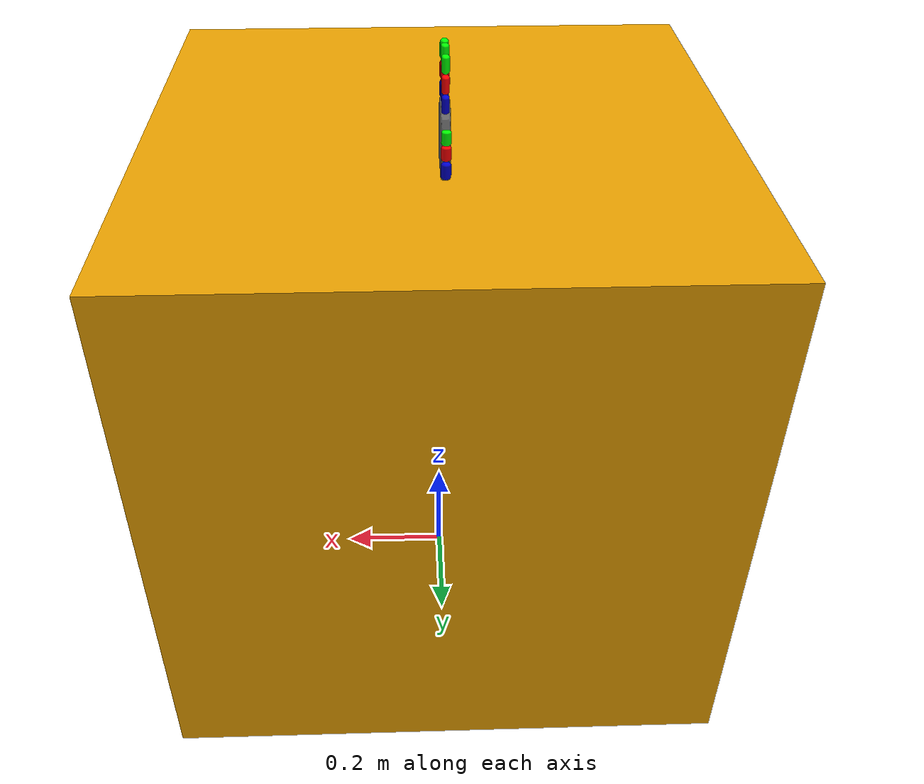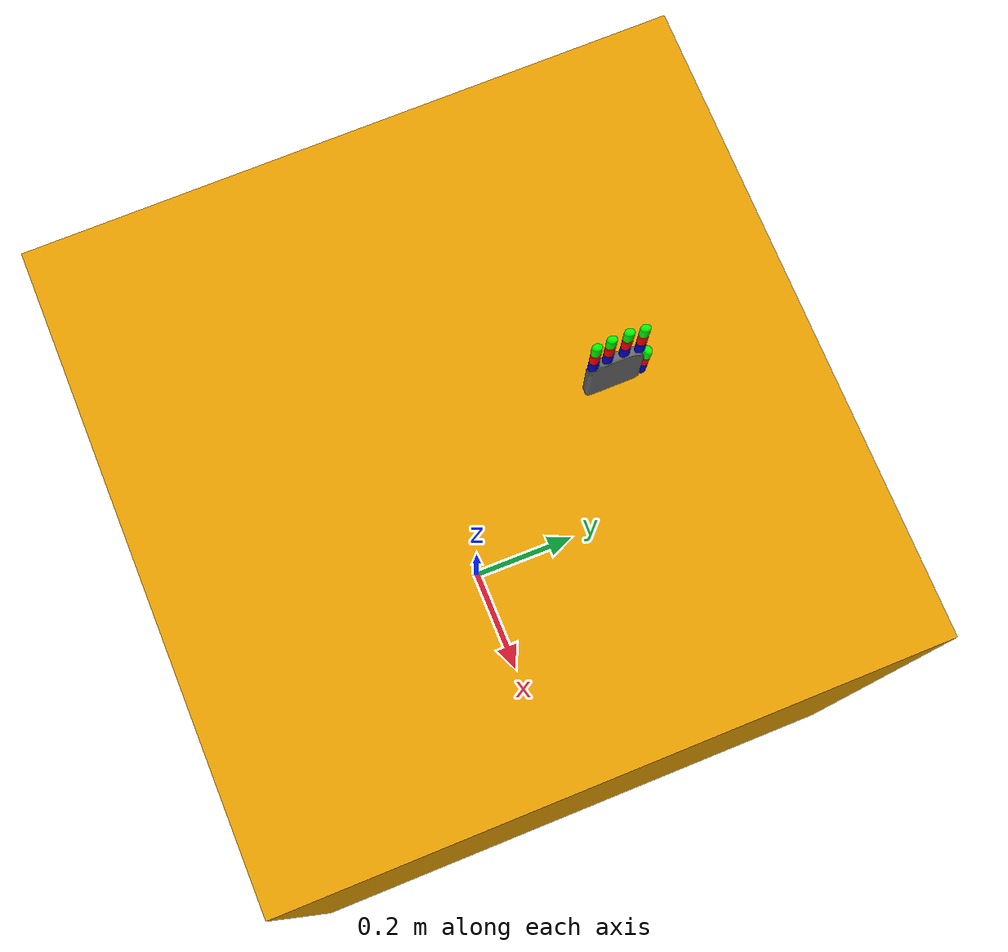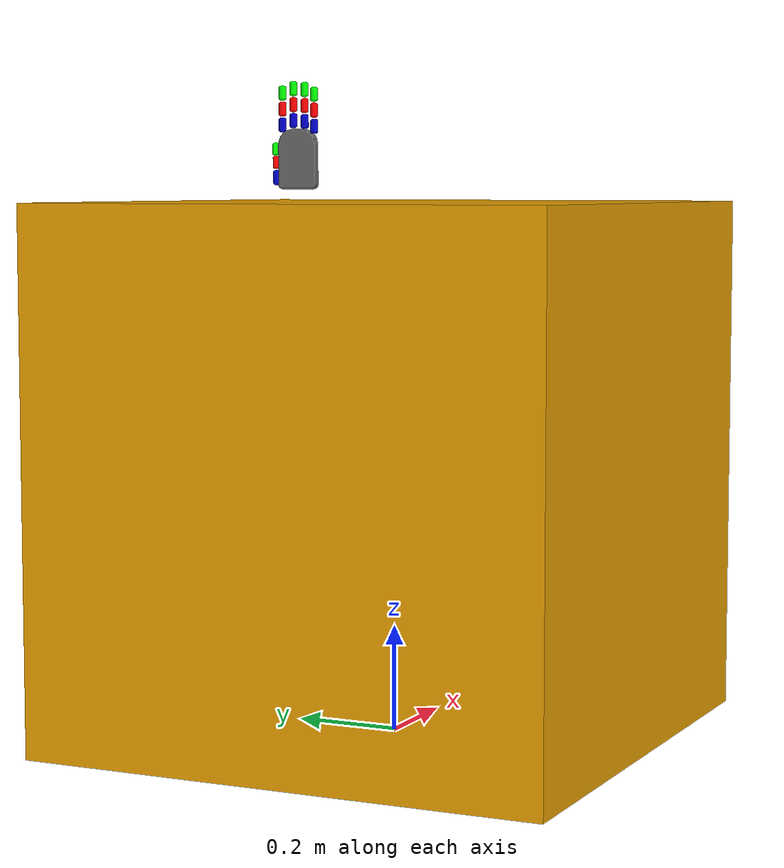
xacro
<?xml version="1.0"?>
<robot xmlns:xacro="http://www.ros.org/wiki/xacro" name="pisa_hand">

	<xacro:include filename="$(find pisa_hand_description)/model/pisa_hand.urdf.xacro"/>

	<link name="box">
		<visual>
			<origin xyz="0 0 0.50" rpy="0 0 0"/>
			<geometry>
				<box size="1.0 1.0 1.0"/>
			</geometry>
		</visual>
	</link>
	<joint name="box_wrist_right_joint_1" type="revolute">
		<origin xyz="0 0.2 1.02" rpy="0 0 0" />
		<parent link="box"/>
		<child link="wrist_right_fake_1"/>
				<axis xyz="1 0 0" />
				<limit lower="${abd_lb *pi/180}" upper="${abd_ub *pi/180}" effort="${effort}" velocity="${velocity}"/>
    	<dynamics damping="${damping}" friction="${friction}"/>
	</joint>
	<link name="wrist_right_fake_1">
	</link>

	<joint name="box_wrist_right_joint_2" type="revolute">
		<origin xyz="0 0 0" rpy="0 0 0" />
		<parent link="wrist_right_fake_1"/>
		<child link="wrist_right_fake_2"/>
				<axis xyz="0 1 0" />
				<limit lower="${abd_lb *pi/180}" upper="${abd_ub *pi/180}" effort="${effort}" velocity="${velocity}"/>
    	<dynamics damping="${damping}" friction="${friction}"/>
	</joint>
	<link name="wrist_right_fake_2">
	</link>

	<joint name="box_wrist_right_joint_3" type="revolute">
		<origin xyz="0 0 0" rpy="0 0 0" />
		<parent link="wrist_right_fake_2"/>
		<child link="wrist_right"/>
				<axis xyz="0 0 1" />
				<limit lower="${abd_lb *pi/180}" upper="${abd_ub *pi/180}" effort="${effort}" velocity="${velocity}"/>
    	<dynamics damping="${damping}" friction="${friction}"/>
	</joint>

	<link name="wrist_right">
	</link>

	<xacro:pisa_hand parent="wrist_right" name="pisa_hand_right" left="false">
		<origin xyz="0.002 0.009 0.038" rpy="0 0 0"/>
	</xacro:pisa_hand>

</robot>

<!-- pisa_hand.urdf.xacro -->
<robot xmlns:xacro="http://ros.org/wiki/xacro">

	<!--
		HAND MODEL v.01
		Material: ABS
		CAD model available at: http://www.naturalmachinemotioninitiative.com/#!softhand/c24r2
	-->

	<xacro:include filename="$(find pisa_hand_description)/model/materials.urdf.xacro"/>

	<xacro:property name="pi" value="3.1415926535897931" />

	<!-- joint properties -->
	<xacro:property name="abd_lb" value="-30" />
	<xacro:property name="abd_ub" value="30" />
	<xacro:property name="thumb_abd_lb" value="0" />
	<xacro:property name="thumb_abd_ub" value="90" />
	<xacro:property name="inner_lb" value="0" />
	<xacro:property name="inner_ub" value="90" />
	<xacro:property name="middle_lb" value="0" />
	<xacro:property name="middle_ub" value="90" />
	<xacro:property name="outer_lb" value="0" />
	<xacro:property name="outer_ub" value="90" />
	<xacro:property name="velocity" value="100" />
	<xacro:property name="effort" value="100" />
	<xacro:property name="damping" value="0.0" />
	<xacro:property name="friction" value="0.0" />

	<!-- synergy vector -->
	<xacro:property name="thumb_abd_R" value="1.3" />
	<xacro:property name="thumb_inner_R" value="1.3" />
	<xacro:property name="thumb_outer_R" value="1.0" />
	<xacro:property name="index_abd_R" value="-0.2" />
	<xacro:property name="index_inner_R" value="1.0" />
	<xacro:property name="index_middle_R" value="1.0" />
	<xacro:property name="index_outer_R" value="1.0" />
	<xacro:property name="middle_abd_R" value="0.0" />
	<xacro:property name="middle_inner_R" value="1.0" />
	<xacro:property name="middle_middle_R" value="1.0" />
	<xacro:property name="middle_outer_R" value="1.0" />
	<xacro:property name="ring_abd_R" value="0.2" />
	<xacro:property name="ring_inner_R" value="1.0" />
	<xacro:property name="ring_middle_R" value="1.0" />
	<xacro:property name="ring_outer_R" value="1.0" />
	<xacro:property name="little_abd_R" value="0.4" />
	<xacro:property name="little_inner_R" value="1.0" />
	<xacro:property name="little_middle_R" value="1.0" />
	<xacro:property name="little_outer_R" value="1.0" />

	<!-- synergy joint properties -->
	<xacro:property name="synergy_lb" value="0.0" />
	<xacro:property name="synergy_ub" value="1.0" />
	<xacro:property name="max_synergy_velocity" value="100" />
	<xacro:property name="max_synergy_effort" value="100" />
	<xacro:property name="synergy_damping" value="0.0" />
	<xacro:property name="synergy_friction" value="0.0" />

	<!-- SOFT FINGER model -->
	<!-- 4 fingers are equal (index, middle, ring, little) -->
	<xacro:macro name="soft_finger" params="parent parent_name name position orientation abd_R ">

		<!-- KNUCKLE -->
		<joint name="${name}_abd_joint" type="revolute">
			<origin xyz="${position}" rpy="${orientation}" />
			<parent link="${parent}"/>
			<child link="${name}_knuckle_link"/>
			<axis xyz="-1 0 0" />
			<limit lower="${abd_lb *pi/180}" upper="${abd_ub *pi/180}" effort="${effort}" velocity="${velocity}"/>
			<dynamics damping="${damping}" friction="${friction}"/>
		</joint>

		<link name="${name}_knuckle_link">
		</link>

		<!-- PROXIMAL PHALANGE -->
		<joint name="${name}_inner_joint" type="revolute">
			<origin xyz="0 0 0" rpy="0 0 0" />
			<parent link="${name}_knuckle_link"/>
			<child link="${name}_proximal_link"/>
			<axis xyz="0  1 0" />
			<limit lower="${inner_lb *pi/180}" upper="${inner_ub *pi/180}" effort="${effort}" velocity="${velocity}"/>
			<dynamics damping="${damping}" friction="${friction}"/>
		</joint>

		<link name="${name}_proximal_link">
			<visual>
				<geometry>
					<mesh filename="package://pisa_hand_description/meshes/dito.stl" scale=" .0012 .0015 .0008" />
				</geometry>
				<material name="SoftHand/Blue" />
			</visual>
		</link>

		<!-- MIDDLE PHALANGE -->
		<joint name="${name}_middle_joint" type="revolute">
			<origin xyz="0 0 0.03" rpy="0 0 0" />
			<parent link="${name}_proximal_link"/>
			<child link="${name}_middle_link"/>
			<axis xyz="0 1 0" />
			<limit lower="${middle_lb *pi/180}" upper="${middle_ub *pi/180}" effort="${effort}" velocity="${velocity}"/>
			<dynamics damping="${damping}" friction="${friction}"/>
		</joint>

		<link name="${name}_middle_link">
			<visual>
				<geometry>
					<mesh filename="package://pisa_hand_description/meshes/dito.stl" scale=" .0012 .0015 .0008" />
				</geometry>
				<material name="SoftHand/Red" />
			</visual>
		</link>

		<!-- DISTAL PHALANGE -->
		<joint name="${name}_outer_joint" type="revolute">
			<origin xyz="0.0 0 0.03" rpy="0 0 0" />
			<parent link="${name}_middle_link"/>
			<child link="${name}_distal_link"/>
			<axis xyz="0 1 0" />
			<limit lower="${outer_lb *pi/180}" upper="${outer_ub *pi/180}" effort="${effort}" velocity="${velocity}"/>
			<dynamics damping="${damping}" friction="${friction}"/>
		</joint>

		<link name="${name}_distal_link">
			<visual>
				<geometry>
					<mesh filename="package://pisa_hand_description/meshes/dito.stl" scale=" .0012 .0015 .0008" />
				</geometry>
				 <material name="SoftHand/Green" />
			</visual>
		</link>

	</xacro:macro>

	<!-- THUMB MODEL -->
	<!-- It has one joint less than rest of fingers -->
	<xacro:macro name="soft_thumb" params="parent parent_name name left position orientation abd_R ">

		 <xacro:if value="${left}">
			<!-- KNUCKLE -->
			 <joint name="${name}_abd_joint" type="revolute">
				<origin xyz="${position}" rpy="${orientation}" />
				<parent link="${parent}"/>
				<child link="${name}_fake_link"/>
				<axis xyz="0 0 1" />
				<limit lower="${thumb_abd_lb *pi/180}" upper="${thumb_abd_ub *pi/180}" effort="${effort}" velocity="${velocity}"/>
				<dynamics damping="${damping}" friction="${friction}"/>
			</joint>

			<link name="${name}_fake_link">
			 </link>

			<joint name="${name}_rot_joint" type="revolute">
				<origin xyz="${position}" rpy="${orientation}" />
				<parent link="${name}_fake_link"/>
				<child link="${name}_knuckle_link"/>
				<axis xyz="0 1 0" />
				<limit lower="${thumb_abd_lb *pi/180}" upper="${thumb_abd_ub *pi/180}" effort="${effort}" velocity="${velocity}"/>
				<dynamics damping="${damping}" friction="${friction}"/>
			</joint>

			<link name="${name}_knuckle_link">
			</link>

			<!-- PROXIMAL PHALANGE -->
			<joint name="${name}_inner_joint" type="revolute">
				<origin xyz="0.022500000 0.003300000 0.0" rpy="-0.426627741408745 0 0.0" />
				<parent link="${name}_knuckle_link"/>
				<child link="${name}_proximal_link"/>
				<axis xyz="0 -1 0" />
				<limit lower="${inner_lb *pi/180}" upper="${inner_ub *pi/180}" effort="${effort}" velocity="${velocity}"/>
				<dynamics damping="${damping}" friction="${friction}"/>
			</joint>
		</xacro:if>

		<!-- THUMB RIGHT HAND -->

		<xacro:unless value="${left}">
			<!-- KNUCKLE -->
			<joint name="${name}_abd_joint" type="revolute">
				<origin xyz="${position}" rpy="${orientation}" />
				<parent link="${parent}"/>
				<child link="${name}_fake_link"/>
				<axis xyz="0 1 0" />
				<limit lower="${thumb_abd_lb *pi/180}" upper="${thumb_abd_ub *pi/180}" effort="${effort}" velocity="${velocity}"/>
				<dynamics damping="${damping}" friction="${friction}"/>
			</joint>

			<link name="${name}_fake_link">
			</link>

			<joint name="${name}_rot_joint" type="revolute">
				<origin xyz="0 0 0" rpy="0 1.2 0" />
				<parent link="${name}_fake_link"/>
				<child link="${name}_knuckle_link"/>
				<axis xyz="1 0 0" />
				<limit lower="${thumb_abd_lb *pi/180}" upper="${thumb_abd_ub *pi/180}" effort="${effort}" velocity="${velocity}"/>
				<dynamics damping="${damping}" friction="${friction}"/>
			</joint>

			<link name="${name}_knuckle_link">
				<visual>
					<geometry>
						<mesh filename="package://pisa_hand_description/meshes/dito.stl" scale=" .0014 .0015 .0008" />
					</geometry>
					<material name="SoftHand/Blue" />
				</visual>
			</link>

			<!-- PROXIMAL PHALANGE  xyz="0.022726230 0.00811475 0.0"-->
			    <joint name="${name}_inner_joint" type="revolute">
	           	<origin xyz="0.0 0.0 0.03" rpy="0.0 0.0 0.0" />

				<parent link="${name}_knuckle_link"/>
				<child link="${name}_proximal_link"/>
				<axis xyz=" 1 0 0" />
				<limit lower="${inner_lb *pi/180}" upper="${inner_ub *pi/180}" effort="${effort}" velocity="${velocity}"/>
				<dynamics damping="${damping}" friction="${friction}"/>
			</joint>
		</xacro:unless>

		<link name="${name}_proximal_link">
			<visual>
				<geometry>
					<mesh filename="package://pisa_hand_description/meshes/dito.stl" scale=" .0012 .0015 .0007" />
				</geometry>
				<material name="SoftHand/Red" />
			</visual>
		</link>

		<!-- DISTAL PHALANGE -->
		<joint name="${name}_outer_joint" type="revolute">
			<origin xyz="0.0 0 0.025" rpy="0 0 0" />
			<parent link="${name}_proximal_link"/>
			<child link="${name}_distal_link"/>
			<axis xyz=" 1 0 0" />
			<limit lower="${outer_lb *pi/180}" upper="${outer_ub *pi/180}" effort="${effort}" velocity="${velocity}"/>
		</joint>

		<link name="${name}_distal_link">
			<visual>
				<geometry>
					<mesh filename="package://pisa_hand_description/meshes/dito.stl" scale=" .0012 .0015 .0007" />
				</geometry>
				<material name="SoftHand/Green" />
			</visual>
		</link>
	</xacro:macro>

	<!-- SOFT HAND MODEL -->
	<xacro:macro name="pisa_hand" params="parent name left *origin">

		<!-- MOTOR JOINT -->

		<!-- PALM -->
		<joint name="${name}_palm_joint" type="fixed" >
			<origin xyz="-0.01 0 0.06" rpy="0 0 0" />
			<insert_block name="origin"/>
			<parent link="${parent}" />
			<child link="${name}_palm_link" />
		</joint>

		<link name="${name}_palm_link">
			<xacro:if value="${left}">
				<visual>
					<geometry>
						<mesh filename="package://pisa_hand_description/meshes/palm_left.stl" scale=" .001 .001 .001" />
					</geometry>
					<material name="SoftHand/DarkGrey" />
				</visual>
			</xacro:if>
			<xacro:unless value="${left}">
				<visual>
					<geometry>
						<mesh filename="package://pisa_hand_description/meshes/palmo.stl" scale=" .0015 .002 .0019" />
					</geometry>
					<material name="SoftHand/DarkGrey" />
				</visual>
			</xacro:unless>
		</link>

		<!-- THUMB AND FINGERS -->
		<!-- change anchor points accordingly to the leftness -->
		<xacro:if value="${left}">
			<xacro:soft_thumb parent="${name}_palm_link" parent_name="${name}" name="${name}_thumb" left="${left}" position="0.005669722 -0.032876873 0.018373996" orientation="0.0 -0.43633198577877463 -1.570796326794897"  abd_R="${thumb_abd_R *(thumb_abd_ub - thumb_abd_lb)*pi/180}" />

			<xacro:soft_finger parent="${name}_palm_link" parent_name="${name}" name="${name}_index" position="-0.003349856 -0.019500000 0.058891802" orientation="-1.5707963267948957 -1.2217307407768807 -1.570796326794897" abd_R="${index_abd_R}" />

			<xacro:soft_finger parent="${name}_palm_link" parent_name="${name}" name="${name}_middle" position="-0.003349856 0.0 0.072391802" orientation="-3.141592653589793 -1.5707963267948966 0.0" abd_R="${middle_abd_R}"  />

			<xacro:soft_finger parent="${name}_palm_link" parent_name="${name}" name="${name}_ring" position="-0.003349856 0.019500000 0.058891802" orientation="1.5707963267948952 -1.3962636194521678 1.5707963267948966"  abd_R="${ring_abd_R}"  />

			<xacro:soft_finger parent="${name}_palm_link" parent_name="${name}" name="${name}_little" position="-0.00349856 0.039000000 0.045391802" orientation="1.5707963267948957 -1.2217307407768807 1.570796326794897"  abd_R="${little_abd_R}"  />
		</xacro:if>

		<xacro:unless value="${left}">

			<xacro:soft_thumb parent="${name}_palm_link" parent_name="${name}" name="${name}_thumb" left="${left}" position="0.007 0.045 -0.045" orientation="0 -1.16 1.57" abd_R="${thumb_abd_R *(thumb_abd_ub - thumb_abd_lb)*pi/180}"  />

			<xacro:soft_finger parent="${name}_palm_link" parent_name="${name}" name="${name}_index" position="0.008 0.033 0.054" orientation="0 0 0"  abd_R="${index_abd_R}"  />

			<xacro:soft_finger parent="${name}_palm_link" parent_name="${name}" name="${name}_middle" position="0.008 0.010 0.062" orientation="0 0 0.0" abd_R="${middle_abd_R}"  />

			<xacro:soft_finger parent="${name}_palm_link" parent_name="${name}" name="${name}_ring" position="0.008 -0.014 0.060" orientation="0 0 0" abd_R="${ring_abd_R}" />

			<xacro:soft_finger parent="${name}_palm_link" parent_name="${name}" name="${name}_little" position=" 0.008 -0.034 0.051" orientation="0 0 0" abd_R="${little_abd_R}" />
		</xacro:unless>

	</xacro:macro>

</robot>

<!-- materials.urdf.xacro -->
<robot>

	<material name="SoftHand/Red">
		<color rgba="1.0 0.0 0.0 1.0"/>
	</material>

	<material name="SoftHand/Green">
		<color rgba="0.0 1 0.0 1.0"/>
	</material>

	<material name="SoftHand/DarkGolden">
		<color rgba="0.4 0.4 0.3 1.0"/>
	</material>

	<material name="SoftHand/Blue">
		<color rgba="0.0 0.0 0.8 0.9"/>
	</material>

	<material name="SoftHand/LightBlue">
		<color rgba="0.0 0.4 1.0 0.5"/>
	</material>

	<material name="SoftHand/LightGrey">
		<color rgba="0.7 0.7 0.7 1.0"/>
	</material>

	<material name="SoftHand/DarkGrey">
		<color rgba="0.4 0.4 0.4 1.0"/>
	</material>

	<material name="SoftHand/Black">
		<color rgba="0.0 0.0 0.0 1.0"/>
	</material>

</robot>
